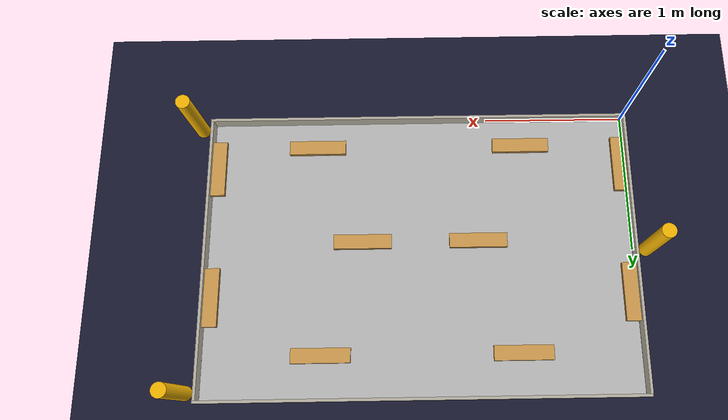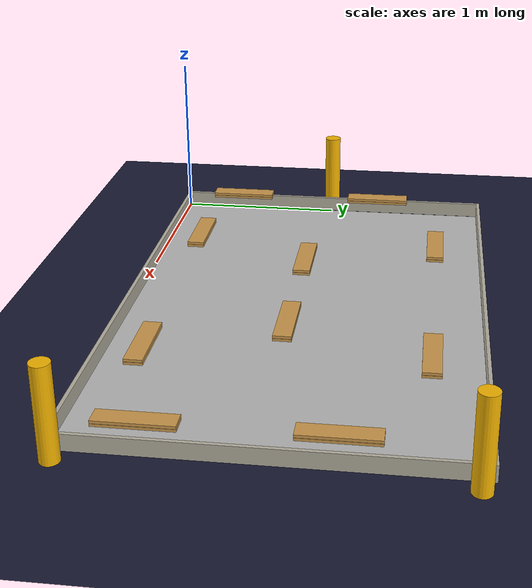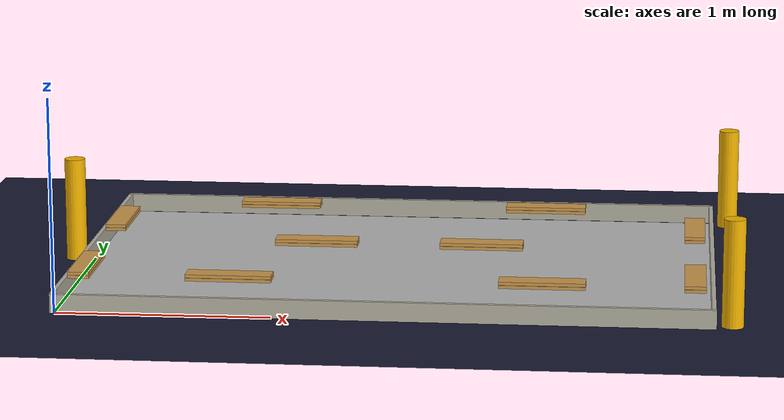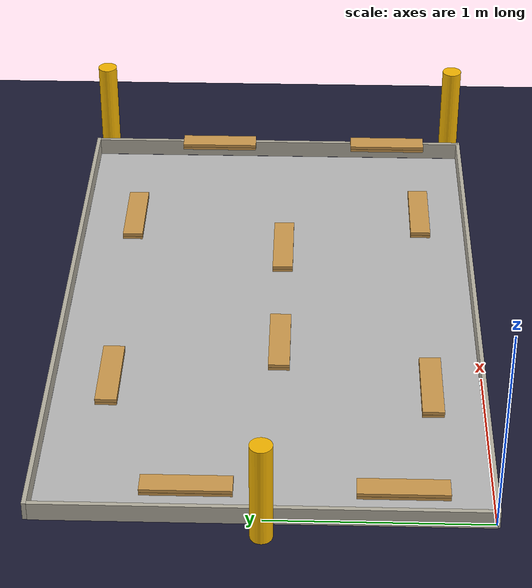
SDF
<sdf version="1.4">
 <world name="eurobot_2025">
  <plugin filename="gz-sim-physics-system" name="gz::sim::systems::Physics"/>
  <plugin filename="gz-sim-user-commands-system" name="gz::sim::systems::UserCommands"/>
  <plugin filename="gz-sim-scene-broadcaster-system" name="gz::sim::systems::SceneBroadcaster"/>
  <plugin filename="gz-sim-sensors-system" name="gz::sim::systems::Sensors">
   <render_engine>ogre2</render_engine>
  </plugin>
  <plugin filename="gz-sim-imu-system" name="gz::sim::systems::Imu"/>
  <scene><ambient>0.4 0.4 0.4 1</ambient><shadows>false</shadows></scene>
  <light type="directional" name="light1">
   <pose>1.5 1 50 0 0 0</pose>
   <diffuse>0.5 0.5 0.5 1</diffuse>
   <specular>1 1 1 0</specular>
   <direction>1 0 0.5</direction>
  </light>
  <light type="directional" name="light2">
   <pose>1.5 1 50 0 0 0</pose>
   <diffuse>0.5 0.5 0.5 1</diffuse>
   <specular>1 1 1 0</specular>
   <direction>1 0 -0.5</direction>
  </light>
  <model name="ground_plane">
   <static>true</static>
   <link name="ground_link">
    <collision name="collision1"><geometry><plane><normal>0 0 1</normal></plane></geometry></collision>
    <visual name="visual1">
     <geometry><plane><normal>0 0 1</normal><size>100 100</size></plane></geometry>
     <material>
      <ambient>0.1 0.1 0.1 0</ambient>
      <diffuse>0.1 0.1 0.2 0</diffuse>
      <specular>0 0 0 0</specular>
      <emissive>0 0 0 0</emissive>
     </material>
    </visual>
   </link>
  </model>
  <include>
   <name>playground</name>
   <uri>model://eurobot_playground_25</uri>
   <pose>1.5 1.0 -0.001 0 0 0</pose>
  </include>
  <include><name>plank_11</name><uri>model://eurobot_25_plank</uri><pose>0.775 0.25 0.118 0 0 0</pose></include>
  <include><name>plank_12</name><uri>model://eurobot_25_plank</uri><pose>0.775 0.25 0.134 0 0 0</pose></include>
  <include>
   <name>plank_21</name>
   <uri>model://eurobot_25_plank</uri>
   <pose>0.075 0.4 0.118 0 0 1.571</pose>
  </include>
  <include>
   <name>plank_22</name>
   <uri>model://eurobot_25_plank</uri>
   <pose>0.075 0.4 0.134 0 0 1.571</pose>
  </include>
  <include>
   <name>plank_31</name>
   <uri>model://eurobot_25_plank</uri>
   <pose>0.075 1.325 0.118 0 0 1.571</pose>
  </include>
  <include>
   <name>plank_32</name>
   <uri>model://eurobot_25_plank</uri>
   <pose>0.075 1.325 0.134 0 0 1.571</pose>
  </include>
  <include><name>plank_41</name><uri>model://eurobot_25_plank</uri><pose>1.1 0.95 0.118 0 0 0</pose></include>
  <include><name>plank_42</name><uri>model://eurobot_25_plank</uri><pose>1.1 0.95 0.134 0 0 0</pose></include>
  <include>
   <name>plank_51</name>
   <uri>model://eurobot_25_plank</uri>
   <pose>0.825 1.725 0.118 0 0 0</pose>
  </include>
  <include>
   <name>plank_52</name>
   <uri>model://eurobot_25_plank</uri>
   <pose>0.825 1.725 0.134 0 0 0</pose>
  </include>
  <include><name>plank_13</name><uri>model://eurobot_25_plank</uri><pose>2.225 0.25 0.118 0 0 0</pose></include>
  <include><name>plank_14</name><uri>model://eurobot_25_plank</uri><pose>2.225 0.25 0.134 0 0 0</pose></include>
  <include>
   <name>plank_23</name>
   <uri>model://eurobot_25_plank</uri>
   <pose>2.925 0.4 0.118 0 0 1.571</pose>
  </include>
  <include>
   <name>plank_24</name>
   <uri>model://eurobot_25_plank</uri>
   <pose>2.925 0.4 0.134 0 0 1.571</pose>
  </include>
  <include>
   <name>plank_33</name>
   <uri>model://eurobot_25_plank</uri>
   <pose>2.925 1.325 0.118 0 0 1.571</pose>
  </include>
  <include>
   <name>plank_34</name>
   <uri>model://eurobot_25_plank</uri>
   <pose>2.925 1.325 0.134 0 0 1.571</pose>
  </include>
  <include><name>plank_43</name><uri>model://eurobot_25_plank</uri><pose>1.9 0.95 0.118 0 0 0</pose></include>
  <include><name>plank_44</name><uri>model://eurobot_25_plank</uri><pose>1.9 0.95 0.134 0 0 0</pose></include>
  <include>
   <name>plank_53</name>
   <uri>model://eurobot_25_plank</uri>
   <pose>2.175 1.725 0.118 0 0 0</pose>
  </include>
  <include>
   <name>plank_54</name>
   <uri>model://eurobot_25_plank</uri>
   <pose>2.175 1.725 0.134 0 0 0</pose>
  </include>
  <model name="wall1">
   <static>true</static>
   <pose>1.502 0 0.045 0 0 0</pose>
   <link name="body">
    <collision name="collision1"><geometry><box><size>3.04 0.02 0.09</size></box></geometry></collision>
    <visual name="visual1">
     <geometry><box><size>3.04 0.02 0.09</size></box></geometry>
     <material>
      <ambient>0.71 0.69 0.63 1.0</ambient>
      <diffuse>0.71 0.69 0.63 1.0</diffuse>
      <specular>0.1 0.1 0.1 1</specular>
      <emissive>0 0 0 0</emissive>
     </material>
    </visual>
   </link>
  </model>
  <model name="wall2">
   <static>true</static>
   <pose>1.502 2.01 0.045 0 0 0</pose>
   <link name="body">
    <collision name="collision1"><geometry><box><size>3.04 0.02 0.09</size></box></geometry></collision>
    <visual name="visual1">
     <geometry><box><size>3.04 0.02 0.09</size></box></geometry>
     <material>
      <ambient>0.71 0.69 0.63 1.0</ambient>
      <diffuse>0.71 0.69 0.63 1.0</diffuse>
      <specular>0.1 0.1 0.1 1</specular>
      <emissive>0 0 0 0</emissive>
     </material>
    </visual>
   </link>
  </model>
  <model name="wall3">
   <static>true</static>
   <pose>3.01 1.0 0.045 0 0 0</pose>
   <link name="body">
    <collision name="collision1"><geometry><box><size>0.02 2.0 0.09</size></box></geometry></collision>
    <visual name="visual1">
     <geometry><box><size>0.02 2 0.09</size></box></geometry>
     <material>
      <ambient>0.71 0.69 0.63 1.0</ambient>
      <diffuse>0.71 0.69 0.63 1.0</diffuse>
      <specular>0.1 0.1 0.1 1</specular>
      <emissive>0 0 0 0</emissive>
     </material>
    </visual>
   </link>
  </model>
  <model name="wall4">
   <static>true</static>
   <pose>-0.01 1.0 0.045 0 0 0</pose>
   <link name="body">
    <collision name="collision1"><geometry><box><size>0.02 2.0 0.09</size></box></geometry></collision>
    <visual name="visual1">
     <geometry><box><size>0.02 2 0.09</size></box></geometry>
     <material>
      <ambient>0.71 0.69 0.63 1.0</ambient>
      <diffuse>0.71 0.69 0.63 1.0</diffuse>
      <specular>0.1 0.1 0.1 1</specular>
      <emissive>0 0 0 0</emissive>
     </material>
    </visual>
   </link>
  </model>
  <model name="landmark2">
   <pose>-0.094 1.0 0.25 0 0 0</pose>
   <static>true</static>
   <link name="link">
    <collision name="collision">
     <geometry><cylinder><length>0.5</length><radius>0.05</radius></cylinder></geometry>
     <laser_retro>20.0</laser_retro>
    </collision>
    <visual name="visual">
     <geometry><cylinder><length>0.5</length><radius>0.05</radius></cylinder></geometry>
     <material>
      <ambient>0.96 0.71 0.0 1</ambient>
      <diffuse>0.96 0.71 0.0 1</diffuse>
      <specular>0 0 0 0</specular>
      <emissive>0 0 0 0</emissive>
     </material>
    </visual>
   </link>
  </model>
  <model name="landmark4">
   <pose>3.094 0.05 0.25 0 0 0</pose>
   <static>true</static>
   <link name="link">
    <collision name="collision">
     <geometry><cylinder><length>0.5</length><radius>0.05</radius></cylinder></geometry>
     <laser_retro>40.0</laser_retro>
    </collision>
    <visual name="visual">
     <geometry><cylinder><length>0.5</length><radius>0.05</radius></cylinder></geometry>
     <material>
      <ambient>0.96 0.71 0.0 1</ambient>
      <diffuse>0.96 0.71 0.0 1</diffuse>
      <specular>0 0 0 0</specular>
      <emissive>0 0 0 0</emissive>
     </material>
    </visual>
   </link>
  </model>
  <model name="landmark6">
   <pose>3.094 1.95 0.25 0 0 0</pose>
   <static>true</static>
   <link name="link">
    <collision name="collision">
     <geometry><cylinder><length>0.5</length><radius>0.05</radius></cylinder></geometry>
     <laser_retro>60.0</laser_retro>
    </collision>
    <visual name="visual">
     <geometry><cylinder><length>0.5</length><radius>0.05</radius></cylinder></geometry>
     <material>
      <ambient>0.96 0.71 0.0 1</ambient>
      <diffuse>0.96 0.71 0.0 1</diffuse>
      <specular>0 0 0 0</specular>
      <emissive>0 0 0 0</emissive>
     </material>
    </visual>
   </link>
  </model>
 </world>
</sdf>

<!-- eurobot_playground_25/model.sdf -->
<sdf version="1.6">
  <model name="Eurobot Playground Model">
    <static>true</static>
  <link name="plane">
      <collision name="plane_collision">
        <geometry>
          <box>
            <size>3 2 0.0001</size>
          </box>
        </geometry>
      </collision>
      <visual name="plane_visual">
        <geometry>
          <box>
            <size>3 2 0.0001</size>
          </box>
        </geometry>
        <material>
          <script>
              <uri>model://eurobot_playground_25/materials/scripts</uri>
              <uri>model://eurobot_playground_25/materials/textures/</uri>
              <name>Playground/2025</name>
          </script>
      </material>
      </visual>
    </link>

  </model>
</sdf>

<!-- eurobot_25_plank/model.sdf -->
<sdf version="1.6">
  <model name="Eurobot Plank Model ">
    <static>false</static>
    <link name="plank">
      <collision name="plank_collision">
        <geometry>
          <box>
            <size>0.4 0.1 0.015</size>
          </box>
        </geometry>
        <surface>
          <friction>
            <ode>
              <mu>0.3</mu>
              <mu2>0.3</mu2>
            </ode>
          </friction>
           <contact>
            <ode>
              <kp>100000</kp>   <!-- Spring stiffness -->
              <kd>1</kd>        <!-- Damping coefficient -->
            </ode>
          </contact>
        </surface>
      </collision>
      <!-- Inertial for beech wood (Buche) -->
      <inertial>
        <inertia>
          <ixx>0.00601</ixx>
          <ixy>0</ixy>
          <ixz>0</ixz>
          <iyy>0.00638</iyy>
          <iyz>0</iyz>
          <izz>0.00038</izz>
        </inertia>
        <mass>0.45</mass>
      </inertial>
      <visual name="plank_visual">
        <geometry>
          <box>
            <size>0.4 0.1 0.015</size>
          </box>
        </geometry>
        <material>
          <ambient>0.80 0.60 0.30 1.0</ambient>
          <diffuse>0.80 0.60 0.30 1.0</diffuse>
          <specular>0.1 0.1 0.1 1</specular>
          <emissive>0 0 0 0</emissive>
        </material>
      </visual>
    </link>
  </model>
</sdf>
